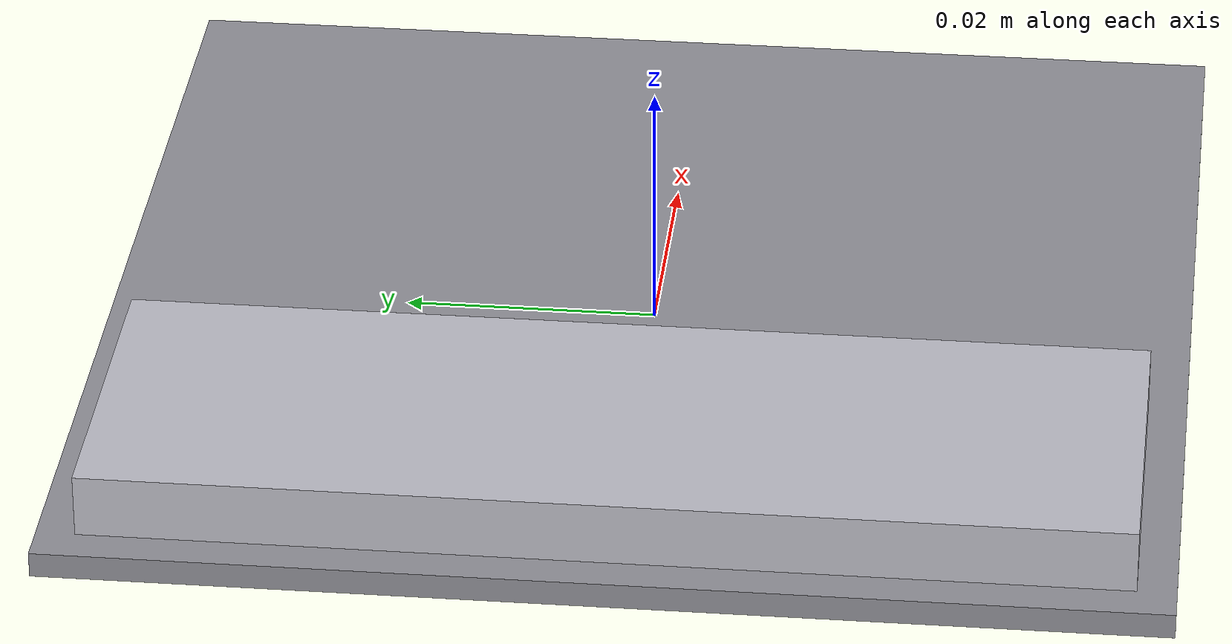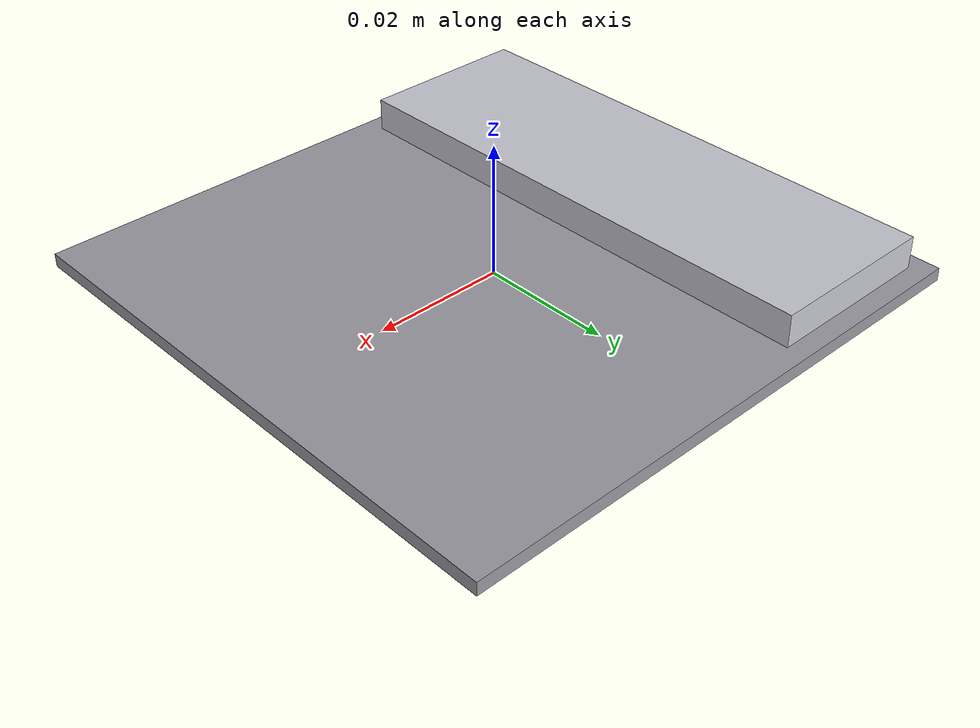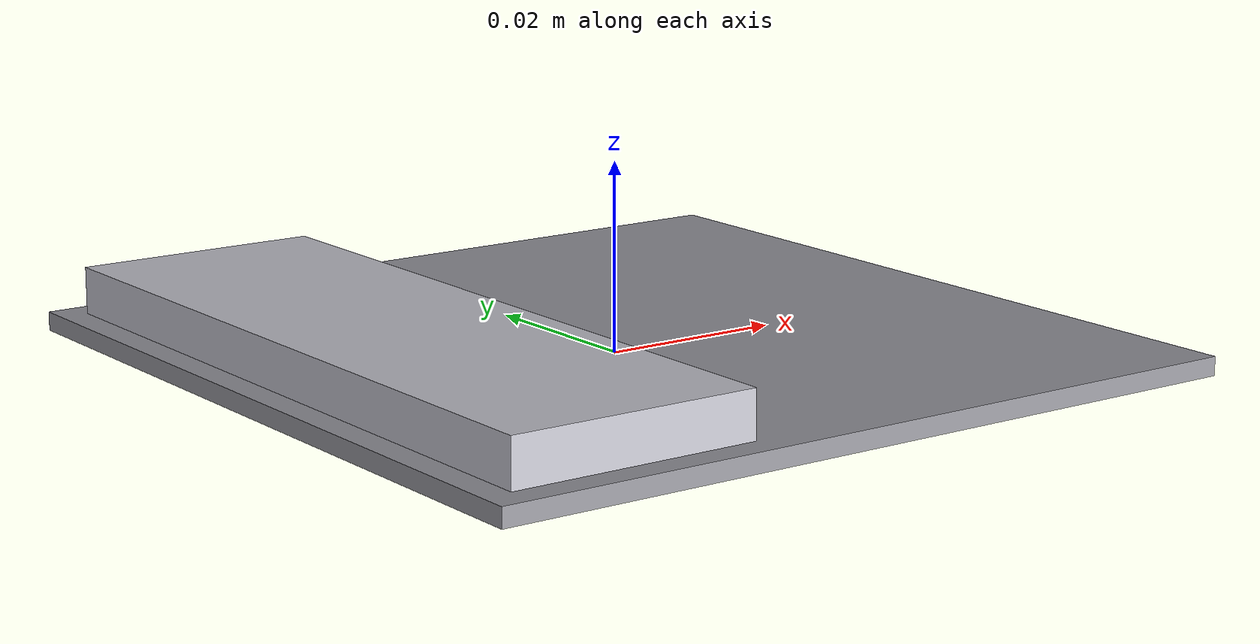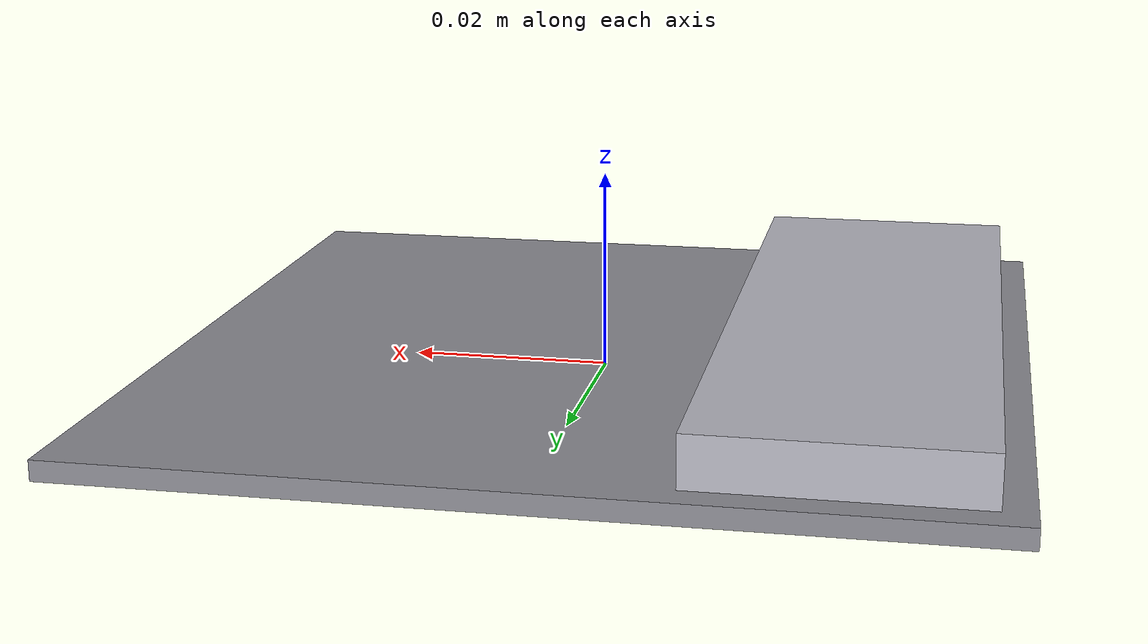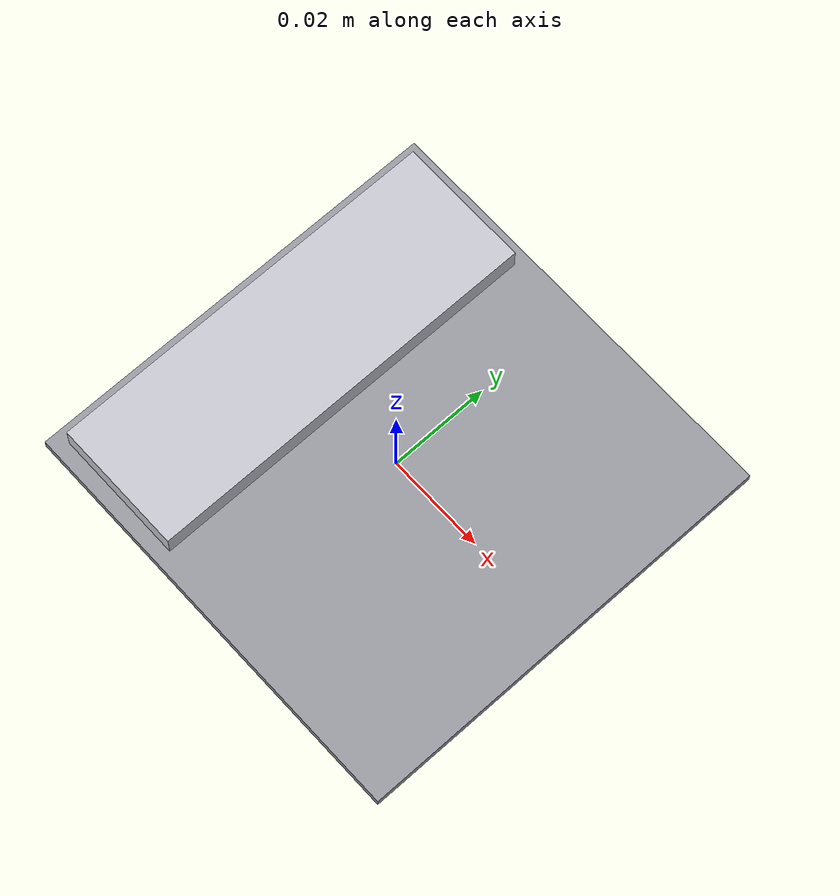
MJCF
<mujoco model="Switch_Quantity1_41">
  <asset>
    <material name="Switch_Quantity1_41_bezel" rgba="0.60 0.60 0.63 1" specular="0.9" shininess="0.95"/>
    <material name="Switch_Quantity1_41_button" rgba="0.78 0.78 0.82 1" specular="0.9" shininess="0.95"/>
  </asset>
  <worldbody>
    <body name="Switch_Quantity1_41">
      <geom name="Switch_Quantity1_41_bezel" type="box"
            pos="0 0 0.001" size="0.043 0.043 0.001"
            material="Switch_Quantity1_41_bezel"/>
      <geom name="Switch_Quantity1_41_button" type="box"
            pos="-0.02667 0 0.0035" size="0.01333 0.04 0.0035"
            material="Switch_Quantity1_41_button"/>
    </body>
  </worldbody>
</mujoco>
